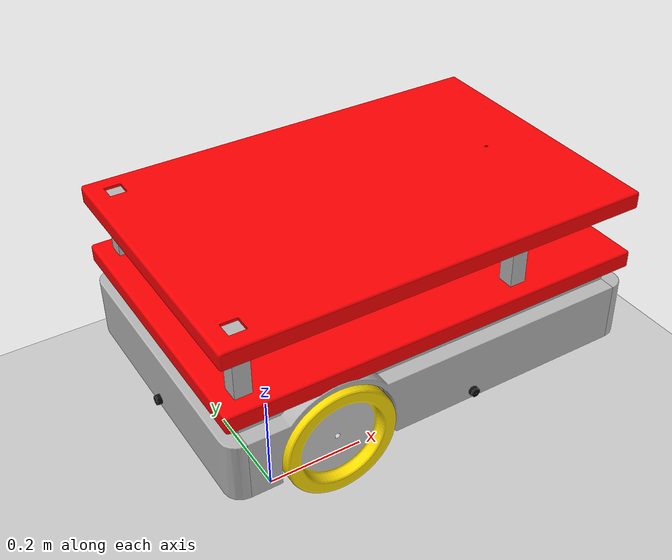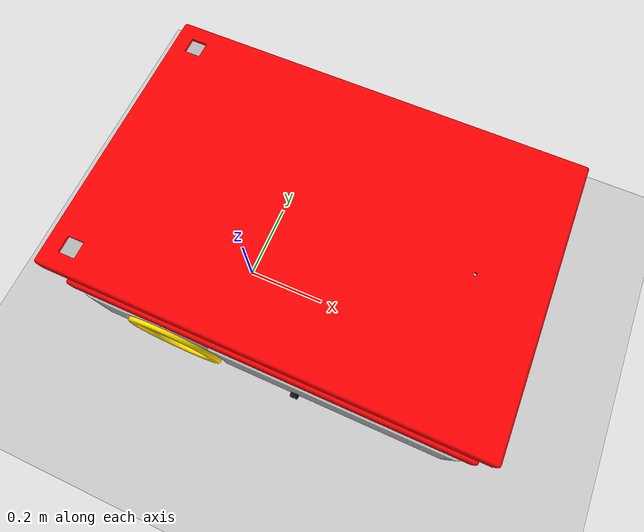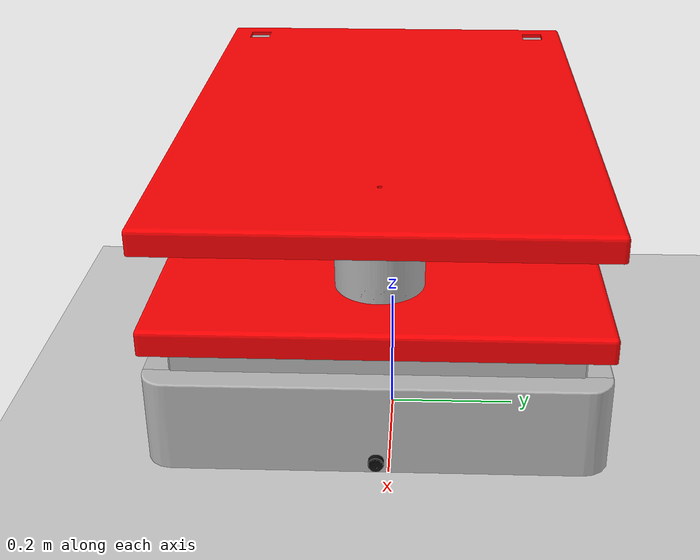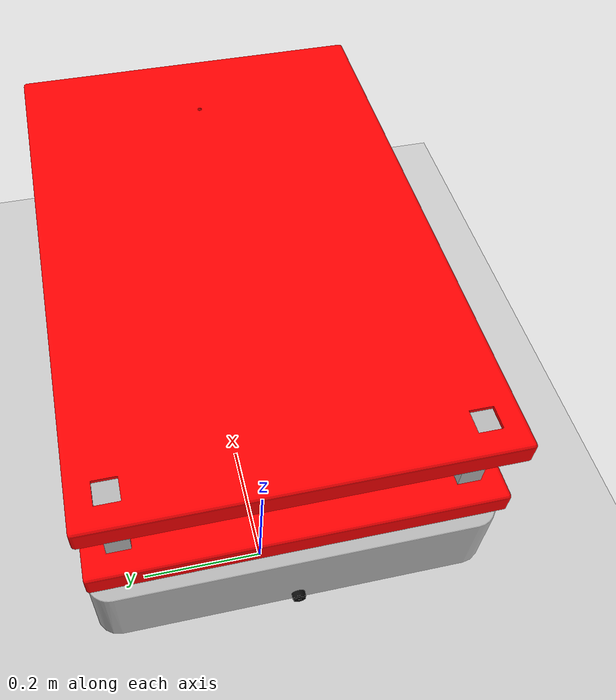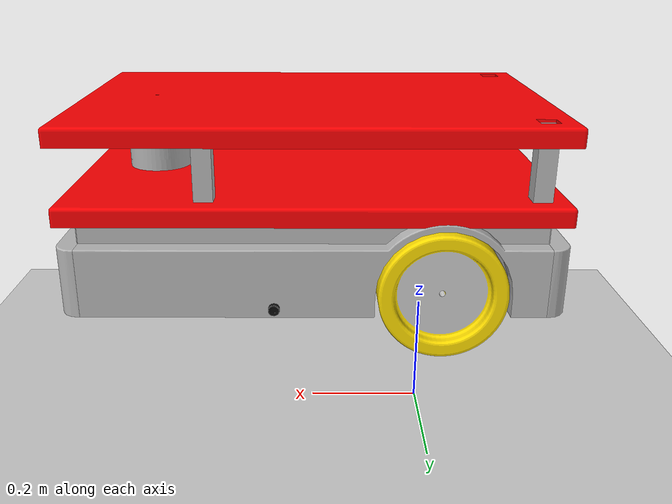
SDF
<?xml version="1.0" ?>

<sdf version="1.6">
  <world name="default">

    <include>
      <uri>model://sun</uri>
    </include>
    <include>
      <uri>model://ground_plane</uri>
    </include>

    <include>
      <pose>0 0 0.33 0 0 0</pose>
      <uri>model://scooby</uri>
    </include>

  </world>
</sdf>

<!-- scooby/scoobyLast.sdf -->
<sdf version='1.7'>
  <model name='scooby'>
    <link name='base_link'>
      <inertial>
       <pose>0 0 0 0 -0 0</pose>
        <mass>7.4313</mass>
        <inertia>
          <ixx>0.31999</ixx>
          <ixy>2.761E-07</ixy>
          <ixz>0.014025</ixz>
          <iyy>0.58221</iyy>
          <iyz>-3.6194E-08</iyz>
          <izz>0.76546</izz>
        </inertia>
      </inertial>
      <collision name='base_link_collision'>
        <pose>0 0 0 0 -0 0</pose>
        <geometry>
          <mesh>
            <scale>1 1 1</scale>
            <uri>model://scooby/meshes/base_link.STL</uri>
          </mesh>
        </geometry>
      </collision>

      <collision name='base_link_fixed_joint_lump__Care_B_Link_collision_2'>
        <pose>0 0 0 0 -0 0</pose>
        <geometry>
          <mesh>
            <scale>1 1 1</scale>
            <uri>model://scooby/meshes/Care_B_Link.STL</uri>
          </mesh>
        </geometry>
      </collision>
      <collision name='base_link_fixed_joint_lump__Care_Down_Velodyne_Link_collision_3'>
        <pose>0 0 0 0 -0 0</pose>
        <geometry>
          <mesh>
            <scale>1 1 1</scale>
            <uri>model://scooby/meshes/Care_Down_Velodyne_Link.dae</uri>
          </mesh>
        </geometry>
      </collision>
      <collision name='base_link_fixed_joint_lump__Care_F_Link_collision_4'>
        <pose>0 0 0 0 -0 0</pose>
        <geometry>
          <mesh>
            <scale>1 1 1</scale>
            <uri>model://scooby/meshes/Care_F_Link.STL</uri>
          </mesh>
        </geometry>
      </collision>
      <collision name='base_link_fixed_joint_lump__Care_L_Link_collision_5'>
        <pose>0 0 0 0 -0 0</pose>
        <geometry>
          <mesh>
            <scale>1 1 1</scale>
            <uri>model://scooby/meshes/Care_L_Link.STL</uri>
          </mesh>
        </geometry>
      </collision>
      <collision name='base_link_fixed_joint_lump__Care_R_Link_collision_6'>
        <pose>0 0 0 0 -0 0</pose>
        <geometry>
          <mesh>
            <scale>1 1 1</scale>
            <uri>model://scooby/meshes/Care_R_Link.STL</uri>
          </mesh>
        </geometry>
      </collision>
      <collision name='base_link_fixed_joint_lump__Care_UP_Velodyne_Link_collision_7'>
        <pose>0 0 0 0 -0 0</pose>
        <geometry>
          <mesh>
            <scale>1 1 1</scale>
            <uri>model://scooby/meshes/Care_UP_Velodyne_Link.dae</uri>
          </mesh>
        </geometry>
      </collision>
      <collision name='base_link_fixed_joint_lump__IMU_F_Link_collision_8'>
        <pose>0.473193 -0.020487 0.07725 0 -0 0</pose>
        <geometry>
          <mesh>
            <scale>1 1 1</scale>
            <uri>model://scooby/meshes/IMU_F_Link.STL</uri>
          </mesh>
        </geometry>
      </collision>

      <collision name='base_link_fixed_joint_lump__UTS_B_Link_collision_10'>
        <pose>-0.199908 0 -0.02 0 -0 0</pose>
        <geometry>
          <mesh>
            <scale>1 1 1</scale>
            <uri>model://scooby/meshes/UTS_B_Link.dae</uri>
          </mesh>
        </geometry>
      </collision>
      <collision name='base_link_fixed_joint_lump__UTS_F_Link_collision_11'>
        <pose>0.527198 0 -0.02 3.14159 1.5708 0</pose>
        <geometry>
          <mesh>
            <scale>1 1 1</scale>
            <uri>model://scooby/meshes/UTS_F_Link.dae</uri>
          </mesh>
        </geometry>
      </collision>
      <collision name='base_link_fixed_joint_lump__UTS_L_Link_collision_12'>
        <pose>0.259268 0.270588 -0.02 0 -0 0</pose>
        <geometry>
          <mesh>
            <scale>1 1 1</scale>
            <uri>model://scooby/meshes/UTS_L_Link.dae</uri>
          </mesh>
        </geometry>
      </collision>
      <collision name='base_link_fixed_joint_lump__UTS_R_Link_collision_13'>
        <pose>0.259273 -0.270588 -0.02 0 -0 0</pose>
        <geometry>
          <mesh>
            <scale>1 1 1</scale>
            <uri>model://scooby/meshes/UTS_R_Link.dae</uri>
          </mesh>
        </geometry>
      </collision>
      <collision name='base_link_fixed_joint_lump__Velodyne_Link_collision_14'>
        <pose>0 0 0 0 -0 0</pose>
        <geometry>
          <mesh>
            <scale>1 1 1</scale>
            <uri>model://scooby/meshes/Velodyne_Link.STL</uri>
          </mesh>
        </geometry>
      </collision>
      <visual name='base_link_visual'>
        <pose>0 0 0 0 -0 0</pose>
        <geometry>
          <mesh>
            <scale>1 1 1</scale>
            <uri>model://scooby/meshes/base_link.STL</uri>
          </mesh>
        </geometry>
      </visual>

      <visual name='base_link_fixed_joint_lump__Care_B_Link_visual_2'>
        <pose>0 0 0 0 -0 0</pose>
        <geometry>
          <mesh>
            <scale>1 1 1</scale>
            <uri>model://scooby/meshes/Care_B_Link.STL</uri>
          </mesh>
        </geometry>
      </visual>
      <visual name='base_link_fixed_joint_lump__Care_Down_Velodyne_Link_visual_3'>
        <pose>0 0 0 0 -0 0</pose>
        <geometry>
          <mesh>
            <scale>1 1 1</scale>
            <uri>model://scooby/meshes/Care_Down_Velodyne_Link.dae</uri>
          </mesh>
        </geometry>
      </visual>
      <visual name='base_link_fixed_joint_lump__Care_F_Link_visual_4'>
        <pose>0 0 0 0 -0 0</pose>
        <geometry>
          <mesh>
            <scale>1 1 1</scale>
            <uri>model://scooby/meshes/Care_F_Link.STL</uri>
          </mesh>
        </geometry>
      </visual>
      <visual name='base_link_fixed_joint_lump__Care_L_Link_visual_5'>
        <pose>0 0 0 0 -0 0</pose>
        <geometry>
          <mesh>
            <scale>1 1 1</scale>
            <uri>model://scooby/meshes/Care_L_Link.STL</uri>
          </mesh>
        </geometry>
      </visual>
      <visual name='base_link_fixed_joint_lump__Care_R_Link_visual_6'>
        <pose>0 0 0 0 -0 0</pose>
        <geometry>
          <mesh>
            <scale>1 1 1</scale>
            <uri>model://scooby/meshes/Care_R_Link.STL</uri>
          </mesh>
        </geometry>
      </visual>
      <visual name='base_link_fixed_joint_lump__Care_UP_Velodyne_Link_visual_7'>
        <pose>0 0 0 0 -0 0</pose>
        <geometry>
          <mesh>
            <scale>1 1 1</scale>
            <uri>model://scooby/meshes/Care_UP_Velodyne_Link.dae</uri>
          </mesh>
        </geometry>
      </visual>
      <visual name='base_link_fixed_joint_lump__IMU_F_Link_visual_8'>
        <pose>0.473193 -0.020487 0.07725 0 -0 0</pose>
        <geometry>
          <mesh>
            <scale>1 1 1</scale>
            <uri>model://scooby/meshes/IMU_F_Link.STL</uri>
          </mesh>
        </geometry>
      </visual>

      <visual name='base_link_fixed_joint_lump__UTS_B_Link_visual_10'>
        <pose>-0.199908 0 -0.02 0 -0 0</pose>
        <geometry>
          <mesh>
            <scale>1 1 1</scale>
            <uri>model://scooby/meshes/UTS_B_Link.dae</uri>
          </mesh>
        </geometry>
      </visual>
      <visual name='base_link_fixed_joint_lump__UTS_F_Link_visual_11'>
        <pose>0.527198 0 -0.02 3.14159 1.5708 0</pose>
        <geometry>
          <mesh>
            <scale>1 1 1</scale>
            <uri>model://scooby/meshes/UTS_F_Link.dae</uri>
          </mesh>
        </geometry>
      </visual>
      <visual name='base_link_fixed_joint_lump__UTS_L_Link_visual_12'>
        <pose>0.259268 0.270588 -0.02 0 -0 0</pose>
        <geometry>
          <mesh>
            <scale>1 1 1</scale>
            <uri>model://scooby/meshes/UTS_L_Link.dae</uri>
          </mesh>
        </geometry>
      </visual>
      <visual name='base_link_fixed_joint_lump__UTS_R_Link_visual_13'>
        <pose>0.259273 -0.270588 -0.02 0 -0 0</pose>
        <geometry>
          <mesh>
            <scale>1 1 1</scale>
            <uri>model://scooby/meshes/UTS_R_Link.dae</uri>
          </mesh>
        </geometry>
      </visual>
      <visual name='base_link_fixed_joint_lump__Velodyne_Link_visual_14'>
        <pose>0.4672 0 0.178136 0 -0 0</pose>
        <geometry>
          <mesh>
            <scale>1 1 1</scale>
            <uri>model://scooby/meshes/Velodyne_Link.STL</uri>
          </mesh>
        </geometry>
      </visual>

<!-- ultrasonic sensor right -->

      <!-- ultrasonic sensor left -->

      <sensor name="sensor_ray" type="ray">
        <pose>0.4672 0 0.178136 0 -0 0</pose>
        <ray>
          <scan>
            <horizontal>
              <samples>200</samples>
              <resolution>1.0</resolution>
              <min_angle>-1.57.</min_angle>
              <max_angle>1.57</max_angle>
            </horizontal>
          </scan>
          <range>
            <min>0.05</min>
            <max>50.0</max>
          </range>
        </ray>
        <always_on>true</always_on>
        <visualize>true</visualize>
        <update_rate>50.0</update_rate>
        <plugin name="laser" filename="libgazebo_ros_ray_sensor.so">
          <ros>
            <remapping>~/out:=scan</remapping>
          </ros>
          <frame_name>UTS_F_Link</frame_name>
          <output_type>sensor_msgs/LaserScan</output_type>
        </plugin>
      </sensor>

    </link>

    <joint name='Garfo_Joint' type='fixed'>
      <pose relative_to='base_link'>0.39427 0 0.07325 0 -0 0</pose>
      <parent>base_link</parent>
      <child>Garfo_Link</child>
      <axis>
        <xyz>0 0 1</xyz>
        <limit>
          <lower>-1e+16</lower>
          <upper>1e+16</upper>
        </limit>
        <dynamics>
          <spring_reference>0</spring_reference>
          <spring_stiffness>0</spring_stiffness>
        </dynamics>
      </axis>
    </joint>
    <link name='Garfo_Link'>
      <pose relative_to='Garfo_Joint'>0 0 0 0 -0 0</pose>
      <inertial>
        <pose>0.008845 -4.2e-05 -0.026395 0 -0 0</pose>
        <mass>0.056343</mass>
        <inertia>
          <ixx>6.39445e-05</ixx>
          <ixy>1.72309e-08</ixy>
          <ixz>1.08977e-05</ixz>
          <iyy>6.7327e-05</iyy>
          <iyz>-3.73912e-08</iyz>
          <izz>2.76031e-05</izz>
        </inertia>
      </inertial>
      <collision name='Garfo_Link_collision'>
        <pose>0 0 0 0 -0 0</pose>
        <geometry>
          <mesh>
            <scale>1 1 1</scale>
            <uri>model://scooby/meshes/Garfo_Link.STL</uri>
          </mesh>
        </geometry>
      </collision>
      <visual name='Garfo_Link_visual'>
        <pose>0 0 0 0 -0 0</pose>
        <geometry>
          <mesh>
            <scale>1 1 1</scale>
            <uri>model://scooby/meshes/Garfo_Link.STL</uri>
          </mesh>
        </geometry>
      </visual>
    </link>
    <joint name='Castor_Joint' type='fixed'>
      <pose relative_to='Garfo_Link'>0.032501 -0.000163 -0.098248 0 -0 0</pose>
      <parent>Garfo_Link</parent>
      <child>Castor_Link</child>
      <axis>
        <xyz>0.005021 0.999987 0</xyz>
        <limit>
          <lower>-1e+16</lower>
          <upper>1e+16</upper>
        </limit>
        <dynamics>
          <spring_reference>0</spring_reference>
          <spring_stiffness>0</spring_stiffness>
        </dynamics>
      </axis>
    </joint>
    <link name='Castor_Link'>
      <pose relative_to='Castor_Joint'>0 0 0 0 -0 0</pose>
      <inertial>
        <pose>-0 0 0 0 -0 0</pose>
        <mass>0.348291</mass>
        <inertia>
          <ixx>0.000494821</ixx>
          <ixy>2.36991e-06</ixy>
          <ixz>-7.72435e-20</ixz>
          <iyy>0.000966806</iyy>
          <iyz>-6.56036e-18</iyz>
          <izz>0.000494809</izz>
        </inertia>
      </inertial>
      <collision name='Castor_Link_collision'>
        <pose>0 0 0 0 -0 0</pose>
        <geometry>
          <mesh>
            <scale>1 1 1</scale>
            <uri>model://scooby/meshes/Castor_Link.dae</uri>
          </mesh>
        </geometry>
      </collision>
      <visual name='Castor_Link_visual'>
        <pose>0 0 0 0 -0 0</pose>
        <geometry>
          <mesh>
            <scale>1 1 1</scale>
            <uri>model://scooby/meshes/Castor_Link.dae</uri>
          </mesh>
        </geometry>
      </visual>
    </link>
    <joint name='Roda_L_Joint' type='revolute'>
      <pose relative_to='base_link'>0 0.239 0 0 -0 0</pose>
      <parent>base_link</parent>
      <child>Roda_L_Link</child>
      <axis>
        <xyz>0 1 0</xyz>
        <limit>
          <lower>-1e+16</lower>
          <upper>1e+16</upper>
        </limit>
        <dynamics>
          <spring_reference>0</spring_reference>
          <spring_stiffness>0</spring_stiffness>
        </dynamics>
      </axis>
    </joint>
    <link name='Roda_L_Link'>
      <pose relative_to='Roda_L_Joint'>0 0 0 0 -0 0</pose>
      <inertial>
        <pose>-3e-06 -0.001905 -1e-06 0 -0 0</pose>
        <mass>1.30641</mass>
        <inertia>
          <ixx>0.00432108</ixx>
          <ixy>-7.93594e-08</ixy>
          <ixz>1.46087e-08</ixz>
          <iyy>0.00793978</iyy>
          <iyz>-3.02598e-08</iyz>
          <izz>0.00432105</izz>
        </inertia>
      </inertial>
      <collision name='Roda_L_Link_collision'>
        <pose>0 0 0 0 -0 0</pose>
        <geometry>
          <mesh>
            <scale>1 1 1</scale>
            <uri>model://scooby/meshes/Roda_L_Link.dae</uri>
          </mesh>
        </geometry>
      </collision>
      <visual name='Roda_L_Link_visual'>
        <pose>0 0 0 0 -0 0</pose>
        <geometry>
          <mesh>
            <scale>1 1 1</scale>
            <uri>model://scooby/meshes/Roda_L_Link.dae</uri>
          </mesh>
        </geometry>
      </visual>
    </link>
    <joint name='Roda_R_Joint' type='revolute'>
      <pose relative_to='base_link'>0 -0.239 0 0 -0 0</pose>
      <parent>base_link</parent>
      <child>Roda_R_Link</child>
      <axis>
        <xyz>0 1 0</xyz>
        <limit>
          <lower>-1e+16</lower>
          <upper>1e+16</upper>
        </limit>
        <dynamics>
          <spring_reference>0</spring_reference>
          <spring_stiffness>0</spring_stiffness>
        </dynamics>
      </axis>
    </joint>
    <link name='Roda_R_Link'>
      <pose relative_to='Roda_R_Joint'>0 0 0 0 -0 0</pose>
      <inertial>
        <pose>1e-06 0.001905 3e-06 0 -0 0</pose>
        <mass>1.30641</mass>
        <inertia>
          <ixx>0.00432105</ixx>
          <ixy>-1.97328e-08</ixy>
          <ixz>9.91657e-09</ixz>
          <iyy>0.00793978</iyy>
          <iyz>-8.26086e-08</iyz>
          <izz>0.00432109</izz>
        </inertia>
      </inertial>
      <collision name='Roda_R_Link_collision'>
        <pose>0 0 0 0 -0 0</pose>
        <geometry>
          <mesh>
            <scale>1 1 1</scale>
            <uri>model://scooby/meshes/Roda_R_Link.dae</uri>
          </mesh>
        </geometry>
      </collision>
      <visual name='Roda_R_Link_visual'>
        <pose>0 0 0 0 -0 0</pose>
        <geometry>
          <mesh>
            <scale>1 1 1</scale>
            <uri>model://scooby/meshes/Roda_R_Link.dae</uri>
          </mesh>
        </geometry>
      </visual>
    </link>

    <plugin name='diff_drive' filename='libgazebo_ros_diff_drive.so'>

      <ros>
        <argument>tf:=tf</argument>
        <argument>odom:=odom</argument>
      </ros>

      <update_rate>50.0</update_rate>

      <!-- wheels -->
      <left_joint>Roda_L_Joint</left_joint>
      <right_joint>Roda_R_Joint</right_joint>

      <!-- kinematics -->
      <wheel_separation>0.406</wheel_separation>
      <wheel_diameter>0.200</wheel_diameter>

      <!-- limits -->
      <max_wheel_torque>20</max_wheel_torque>
      <max_wheel_acceleration>0.5</max_wheel_acceleration>

      <!-- output -->
      <publish_odom>true</publish_odom>
      <publish_odom_tf>true</publish_odom_tf>

      <odometry_frame>odom</odometry_frame>
      <robot_base_frame>base_link</robot_base_frame>

    </plugin>

    <plugin name="scooby_joint_state" filename="libgazebo_ros_joint_state_publisher.so">
      <ros>
        <remapping>~/out:=joint_states</remapping>
      </ros>
      <update_rate>50</update_rate>
      <joint_name>Roda_R_Joint</joint_name>
      <joint_name>Roda_L_Joint</joint_name>
    </plugin>

    <link name="imu_link">
      <sensor name="scooby_imu" type="imu">
        <always_on>true</always_on>
        <update_rate>200</update_rate>
        <imu>
          <angular_velocity>
            <x>
              <noise type="gaussian">
                <mean>0.0</mean>
                <stddev>2e-4</stddev>
              </noise>
            </x>
            <y>
              <noise type="gaussian">
                <mean>0.0</mean>
                <stddev>2e-4</stddev>
              </noise>
            </y>
            <z>
              <noise type="gaussian">
                <mean>0.0</mean>
                <stddev>2e-4</stddev>
              </noise>
            </z>
          </angular_velocity>
          <linear_acceleration>
            <x>
              <noise type="gaussian">
                <mean>0.0</mean>
                <stddev>1.7e-2</stddev>
              </noise>
            </x>
            <y>
              <noise type="gaussian">
                <mean>0.0</mean>
                <stddev>1.7e-2</stddev>
              </noise>
            </y>
            <z>
              <noise type="gaussian">
                <mean>0.0</mean>
                <stddev>1.7e-2</stddev>
              </noise>
            </z>
          </linear_acceleration>
        </imu>
        <plugin name="scooby_imu" filename="libgazebo_ros_imu_sensor.so">
          <ros>
            <remapping>~/out:=imu</remapping>
          </ros>
          <frame_name>IMU_F_Link</frame_name>
        </plugin>
      </sensor>
    </link>

    <joint name="imu_joint" type="fixed">
      <parent>base_link</parent>
      <child>imu_link</child>
      <pose>-0.032 0 0.068 0 0 0</pose>
      <axis>
        <xyz>0 0 1</xyz>
      </axis>
    </joint>

  </model>
</sdf>
